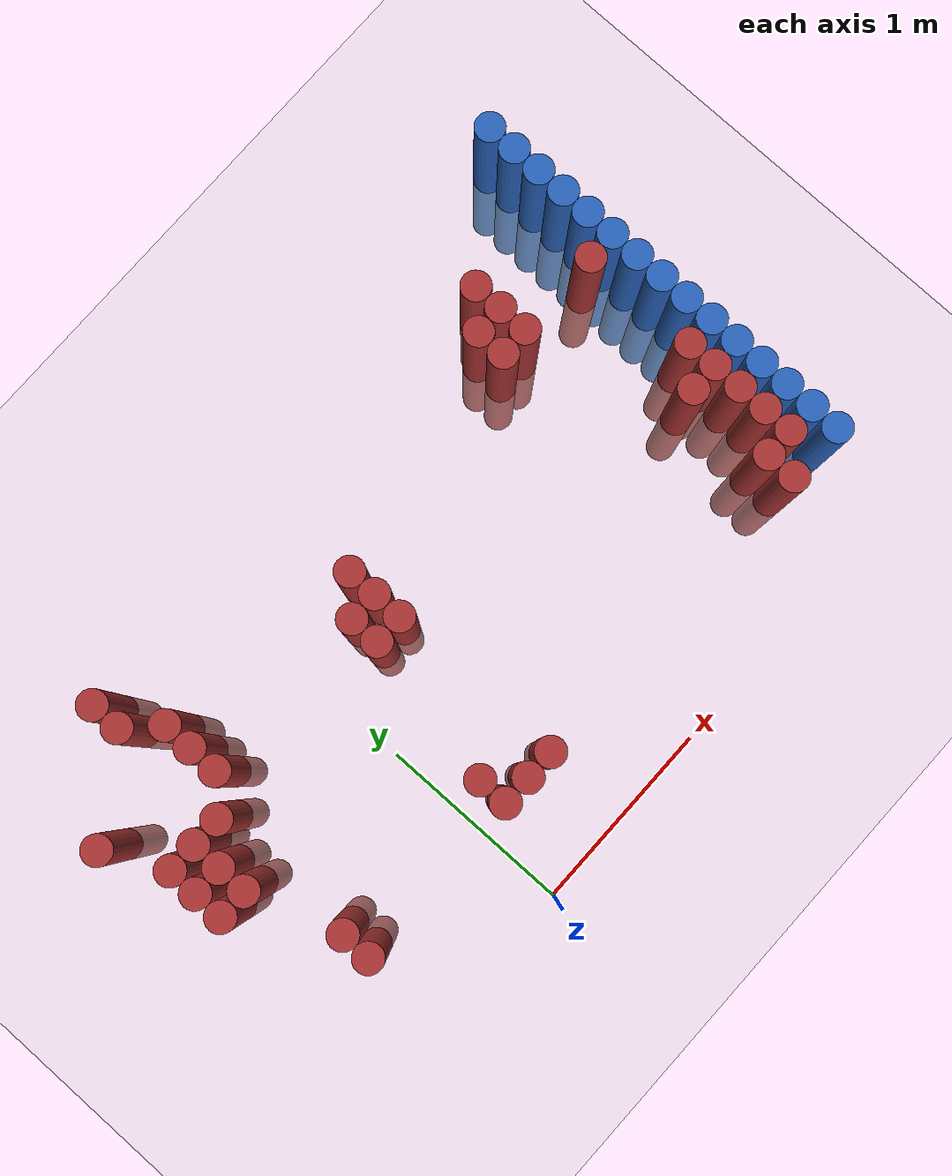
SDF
<sdf version="1.6">
 <world name="default">
  <model name="ground_plane">
   <static>1</static>
   <link name="link">
    <collision name="collision">
     <geometry><plane><normal>0 0 1</normal><size>100 100</size></plane></geometry>
     <surface><friction><ode><mu>100</mu><mu2>50</mu2></ode></friction></surface>
    </collision>
    <visual name="visual">
     <cast_shadows>0</cast_shadows>
     <geometry><plane><normal>0 0 1</normal><size>100 100</size></plane></geometry>
     <material>
      <script><uri>file://media/materials/scripts/gazebo.material</uri><name>Gazebo/Grey</name></script>
     </material>
    </visual>
   </link>
  </model>
  <model name="unit_cylinder_158">
   <static>1</static>
   <pose>-1.175000 1.675000 0.000000 0.000000 0.000000 0.000000</pose>
   <link name="link">
    <inertial>
     <mass>1</mass>
     <inertia><ixx>0.145833</ixx><ixy>0</ixy><ixz>0</ixz><iyy>0.145833</iyy><iyz>0</iyz><izz>0.125</izz></inertia>
    </inertial>
    <collision name="collision">
     <geometry><cylinder><radius>0.075000</radius><length>1.5</length></cylinder></geometry>
    </collision>
    <visual name="visual">
     <geometry><cylinder><radius>0.075000</radius><length>1.5</length></cylinder></geometry>
     <material>
      <ambient>0.648000 0.192000 0.192000 1</ambient>
      <diffuse>0.648000 0.192000 0.192000 1</diffuse>
     </material>
     <material>
      <script><name>Gazebo/Grey</name><uri>file://media/materials/scripts/gazebo.material</uri></script>
     </material>
    </visual>
   </link>
  </model>
  <model name="unit_cylinder_162">
   <static>1</static>
   <pose>-1.025000 1.075000 0.000000 0.000000 0.000000 0.000000</pose>
   <link name="link">
    <inertial>
     <mass>1</mass>
     <inertia><ixx>0.145833</ixx><ixy>0</ixy><ixz>0</ixz><iyy>0.145833</iyy><iyz>0</iyz><izz>0.125</izz></inertia>
    </inertial>
    <collision name="collision">
     <geometry><cylinder><radius>0.075000</radius><length>1.5</length></cylinder></geometry>
    </collision>
    <visual name="visual">
     <geometry><cylinder><radius>0.075000</radius><length>1.5</length></cylinder></geometry>
     <material>
      <ambient>0.648000 0.192000 0.192000 1</ambient>
      <diffuse>0.648000 0.192000 0.192000 1</diffuse>
     </material>
     <material>
      <script><name>Gazebo/Grey</name><uri>file://media/materials/scripts/gazebo.material</uri></script>
     </material>
    </visual>
   </link>
  </model>
  <model name="unit_cylinder_163">
   <static>1</static>
   <pose>-1.025000 1.225000 0.000000 0.000000 0.000000 0.000000</pose>
   <link name="link">
    <inertial>
     <mass>1</mass>
     <inertia><ixx>0.145833</ixx><ixy>0</ixy><ixz>0</ixz><iyy>0.145833</iyy><iyz>0</iyz><izz>0.125</izz></inertia>
    </inertial>
    <collision name="collision">
     <geometry><cylinder><radius>0.075000</radius><length>1.5</length></cylinder></geometry>
    </collision>
    <visual name="visual">
     <geometry><cylinder><radius>0.075000</radius><length>1.5</length></cylinder></geometry>
     <material>
      <ambient>0.648000 0.192000 0.192000 1</ambient>
      <diffuse>0.648000 0.192000 0.192000 1</diffuse>
     </material>
     <material>
      <script><name>Gazebo/Grey</name><uri>file://media/materials/scripts/gazebo.material</uri></script>
     </material>
    </visual>
   </link>
  </model>
  <model name="unit_cylinder_164">
   <static>1</static>
   <pose>-1.025000 1.375000 0.000000 0.000000 0.000000 0.000000</pose>
   <link name="link">
    <inertial>
     <mass>1</mass>
     <inertia><ixx>0.145833</ixx><ixy>0</ixy><ixz>0</ixz><iyy>0.145833</iyy><iyz>0</iyz><izz>0.125</izz></inertia>
    </inertial>
    <collision name="collision">
     <geometry><cylinder><radius>0.075000</radius><length>1.5</length></cylinder></geometry>
    </collision>
    <visual name="visual">
     <geometry><cylinder><radius>0.075000</radius><length>1.5</length></cylinder></geometry>
     <material>
      <ambient>0.648000 0.192000 0.192000 1</ambient>
      <diffuse>0.648000 0.192000 0.192000 1</diffuse>
     </material>
     <material>
      <script><name>Gazebo/Grey</name><uri>file://media/materials/scripts/gazebo.material</uri></script>
     </material>
    </visual>
   </link>
  </model>
  <model name="unit_cylinder_170">
   <static>1</static>
   <pose>-0.875000 1.075000 0.000000 0.000000 0.000000 0.000000</pose>
   <link name="link">
    <inertial>
     <mass>1</mass>
     <inertia><ixx>0.145833</ixx><ixy>0</ixy><ixz>0</ixz><iyy>0.145833</iyy><iyz>0</iyz><izz>0.125</izz></inertia>
    </inertial>
    <collision name="collision">
     <geometry><cylinder><radius>0.075000</radius><length>1.5</length></cylinder></geometry>
    </collision>
    <visual name="visual">
     <geometry><cylinder><radius>0.075000</radius><length>1.5</length></cylinder></geometry>
     <material>
      <ambient>0.648000 0.192000 0.192000 1</ambient>
      <diffuse>0.648000 0.192000 0.192000 1</diffuse>
     </material>
     <material>
      <script><name>Gazebo/Grey</name><uri>file://media/materials/scripts/gazebo.material</uri></script>
     </material>
    </visual>
   </link>
  </model>
  <model name="unit_cylinder_171">
   <static>1</static>
   <pose>-0.875000 1.225000 0.000000 0.000000 0.000000 0.000000</pose>
   <link name="link">
    <inertial>
     <mass>1</mass>
     <inertia><ixx>0.145833</ixx><ixy>0</ixy><ixz>0</ixz><iyy>0.145833</iyy><iyz>0</iyz><izz>0.125</izz></inertia>
    </inertial>
    <collision name="collision">
     <geometry><cylinder><radius>0.075000</radius><length>1.5</length></cylinder></geometry>
    </collision>
    <visual name="visual">
     <geometry><cylinder><radius>0.075000</radius><length>1.5</length></cylinder></geometry>
     <material>
      <ambient>0.648000 0.192000 0.192000 1</ambient>
      <diffuse>0.648000 0.192000 0.192000 1</diffuse>
     </material>
     <material>
      <script><name>Gazebo/Grey</name><uri>file://media/materials/scripts/gazebo.material</uri></script>
     </material>
    </visual>
   </link>
  </model>
  <model name="unit_cylinder_172">
   <static>1</static>
   <pose>-0.875000 1.375000 0.000000 0.000000 0.000000 0.000000</pose>
   <link name="link">
    <inertial>
     <mass>1</mass>
     <inertia><ixx>0.145833</ixx><ixy>0</ixy><ixz>0</ixz><iyy>0.145833</iyy><iyz>0</iyz><izz>0.125</izz></inertia>
    </inertial>
    <collision name="collision">
     <geometry><cylinder><radius>0.075000</radius><length>1.5</length></cylinder></geometry>
    </collision>
    <visual name="visual">
     <geometry><cylinder><radius>0.075000</radius><length>1.5</length></cylinder></geometry>
     <material>
      <ambient>0.648000 0.192000 0.192000 1</ambient>
      <diffuse>0.648000 0.192000 0.192000 1</diffuse>
     </material>
     <material>
      <script><name>Gazebo/Grey</name><uri>file://media/materials/scripts/gazebo.material</uri></script>
     </material>
    </visual>
   </link>
  </model>
  <model name="unit_cylinder_175">
   <static>1</static>
   <pose>-0.725000 0.475000 0.000000 0.000000 0.000000 0.000000</pose>
   <link name="link">
    <inertial>
     <mass>1</mass>
     <inertia><ixx>0.145833</ixx><ixy>0</ixy><ixz>0</ixz><iyy>0.145833</iyy><iyz>0</iyz><izz>0.125</izz></inertia>
    </inertial>
    <collision name="collision">
     <geometry><cylinder><radius>0.075000</radius><length>1.5</length></cylinder></geometry>
    </collision>
    <visual name="visual">
     <geometry><cylinder><radius>0.075000</radius><length>1.5</length></cylinder></geometry>
     <material>
      <ambient>0.648000 0.192000 0.192000 1</ambient>
      <diffuse>0.648000 0.192000 0.192000 1</diffuse>
     </material>
     <material>
      <script><name>Gazebo/Grey</name><uri>file://media/materials/scripts/gazebo.material</uri></script>
     </material>
    </visual>
   </link>
  </model>
  <model name="unit_cylinder_176">
   <static>1</static>
   <pose>-0.725000 0.625000 0.000000 0.000000 0.000000 0.000000</pose>
   <link name="link">
    <inertial>
     <mass>1</mass>
     <inertia><ixx>0.145833</ixx><ixy>0</ixy><ixz>0</ixz><iyy>0.145833</iyy><iyz>0</iyz><izz>0.125</izz></inertia>
    </inertial>
    <collision name="collision">
     <geometry><cylinder><radius>0.075000</radius><length>1.5</length></cylinder></geometry>
    </collision>
    <visual name="visual">
     <geometry><cylinder><radius>0.075000</radius><length>1.5</length></cylinder></geometry>
     <material>
      <ambient>0.648000 0.192000 0.192000 1</ambient>
      <diffuse>0.648000 0.192000 0.192000 1</diffuse>
     </material>
     <material>
      <script><name>Gazebo/Grey</name><uri>file://media/materials/scripts/gazebo.material</uri></script>
     </material>
    </visual>
   </link>
  </model>
  <model name="unit_cylinder_177">
   <static>1</static>
   <pose>-0.725000 1.375000 0.000000 0.000000 0.000000 0.000000</pose>
   <link name="link">
    <inertial>
     <mass>1</mass>
     <inertia><ixx>0.145833</ixx><ixy>0</ixy><ixz>0</ixz><iyy>0.145833</iyy><iyz>0</iyz><izz>0.125</izz></inertia>
    </inertial>
    <collision name="collision">
     <geometry><cylinder><radius>0.075000</radius><length>1.5</length></cylinder></geometry>
    </collision>
    <visual name="visual">
     <geometry><cylinder><radius>0.075000</radius><length>1.5</length></cylinder></geometry>
     <material>
      <ambient>0.648000 0.192000 0.192000 1</ambient>
      <diffuse>0.648000 0.192000 0.192000 1</diffuse>
     </material>
     <material>
      <script><name>Gazebo/Grey</name><uri>file://media/materials/scripts/gazebo.material</uri></script>
     </material>
    </visual>
   </link>
  </model>
  <model name="unit_cylinder_178">
   <static>1</static>
   <pose>-0.725000 1.975000 0.000000 0.000000 0.000000 0.000000</pose>
   <link name="link">
    <inertial>
     <mass>1</mass>
     <inertia><ixx>0.145833</ixx><ixy>0</ixy><ixz>0</ixz><iyy>0.145833</iyy><iyz>0</iyz><izz>0.125</izz></inertia>
    </inertial>
    <collision name="collision">
     <geometry><cylinder><radius>0.075000</radius><length>1.5</length></cylinder></geometry>
    </collision>
    <visual name="visual">
     <geometry><cylinder><radius>0.075000</radius><length>1.5</length></cylinder></geometry>
     <material>
      <ambient>0.648000 0.192000 0.192000 1</ambient>
      <diffuse>0.648000 0.192000 0.192000 1</diffuse>
     </material>
     <material>
      <script><name>Gazebo/Grey</name><uri>file://media/materials/scripts/gazebo.material</uri></script>
     </material>
    </visual>
   </link>
  </model>
  <model name="unit_cylinder_179">
   <static>1</static>
   <pose>-0.725000 2.125000 0.000000 0.000000 0.000000 0.000000</pose>
   <link name="link">
    <inertial>
     <mass>1</mass>
     <inertia><ixx>0.145833</ixx><ixy>0</ixy><ixz>0</ixz><iyy>0.145833</iyy><iyz>0</iyz><izz>0.125</izz></inertia>
    </inertial>
    <collision name="collision">
     <geometry><cylinder><radius>0.075000</radius><length>1.5</length></cylinder></geometry>
    </collision>
    <visual name="visual">
     <geometry><cylinder><radius>0.075000</radius><length>1.5</length></cylinder></geometry>
     <material>
      <ambient>0.648000 0.192000 0.192000 1</ambient>
      <diffuse>0.648000 0.192000 0.192000 1</diffuse>
     </material>
     <material>
      <script><name>Gazebo/Grey</name><uri>file://media/materials/scripts/gazebo.material</uri></script>
     </material>
    </visual>
   </link>
  </model>
  <model name="unit_cylinder_180">
   <static>1</static>
   <pose>-0.575000 1.525000 0.000000 0.000000 0.000000 0.000000</pose>
   <link name="link">
    <inertial>
     <mass>1</mass>
     <inertia><ixx>0.145833</ixx><ixy>0</ixy><ixz>0</ixz><iyy>0.145833</iyy><iyz>0</iyz><izz>0.125</izz></inertia>
    </inertial>
    <collision name="collision">
     <geometry><cylinder><radius>0.075000</radius><length>1.5</length></cylinder></geometry>
    </collision>
    <visual name="visual">
     <geometry><cylinder><radius>0.075000</radius><length>1.5</length></cylinder></geometry>
     <material>
      <ambient>0.648000 0.192000 0.192000 1</ambient>
      <diffuse>0.648000 0.192000 0.192000 1</diffuse>
     </material>
     <material>
      <script><name>Gazebo/Grey</name><uri>file://media/materials/scripts/gazebo.material</uri></script>
     </material>
    </visual>
   </link>
  </model>
  <model name="unit_cylinder_181">
   <static>1</static>
   <pose>-0.575000 1.675000 0.000000 0.000000 0.000000 0.000000</pose>
   <link name="link">
    <inertial>
     <mass>1</mass>
     <inertia><ixx>0.145833</ixx><ixy>0</ixy><ixz>0</ixz><iyy>0.145833</iyy><iyz>0</iyz><izz>0.125</izz></inertia>
    </inertial>
    <collision name="collision">
     <geometry><cylinder><radius>0.075000</radius><length>1.5</length></cylinder></geometry>
    </collision>
    <visual name="visual">
     <geometry><cylinder><radius>0.075000</radius><length>1.5</length></cylinder></geometry>
     <material>
      <ambient>0.648000 0.192000 0.192000 1</ambient>
      <diffuse>0.648000 0.192000 0.192000 1</diffuse>
     </material>
     <material>
      <script><name>Gazebo/Grey</name><uri>file://media/materials/scripts/gazebo.material</uri></script>
     </material>
    </visual>
   </link>
  </model>
  <model name="unit_cylinder_182">
   <static>1</static>
   <pose>-0.575000 1.825000 0.000000 0.000000 0.000000 0.000000</pose>
   <link name="link">
    <inertial>
     <mass>1</mass>
     <inertia><ixx>0.145833</ixx><ixy>0</ixy><ixz>0</ixz><iyy>0.145833</iyy><iyz>0</iyz><izz>0.125</izz></inertia>
    </inertial>
    <collision name="collision">
     <geometry><cylinder><radius>0.075000</radius><length>1.5</length></cylinder></geometry>
    </collision>
    <visual name="visual">
     <geometry><cylinder><radius>0.075000</radius><length>1.5</length></cylinder></geometry>
     <material>
      <ambient>0.648000 0.192000 0.192000 1</ambient>
      <diffuse>0.648000 0.192000 0.192000 1</diffuse>
     </material>
     <material>
      <script><name>Gazebo/Grey</name><uri>file://media/materials/scripts/gazebo.material</uri></script>
     </material>
    </visual>
   </link>
  </model>
  <model name="unit_cylinder_183">
   <static>1</static>
   <pose>0.175000 0.475000 0.000000 0.000000 0.000000 0.000000</pose>
   <link name="link">
    <inertial>
     <mass>1</mass>
     <inertia><ixx>0.145833</ixx><ixy>0</ixy><ixz>0</ixz><iyy>0.145833</iyy><iyz>0</iyz><izz>0.125</izz></inertia>
    </inertial>
    <collision name="collision">
     <geometry><cylinder><radius>0.075000</radius><length>1.5</length></cylinder></geometry>
    </collision>
    <visual name="visual">
     <geometry><cylinder><radius>0.075000</radius><length>1.5</length></cylinder></geometry>
     <material>
      <ambient>0.648000 0.192000 0.192000 1</ambient>
      <diffuse>0.648000 0.192000 0.192000 1</diffuse>
     </material>
     <material>
      <script><name>Gazebo/Grey</name><uri>file://media/materials/scripts/gazebo.material</uri></script>
     </material>
    </visual>
   </link>
  </model>
  <model name="unit_cylinder_184">
   <static>1</static>
   <pose>0.175000 0.625000 0.000000 0.000000 0.000000 0.000000</pose>
   <link name="link">
    <inertial>
     <mass>1</mass>
     <inertia><ixx>0.145833</ixx><ixy>0</ixy><ixz>0</ixz><iyy>0.145833</iyy><iyz>0</iyz><izz>0.125</izz></inertia>
    </inertial>
    <collision name="collision">
     <geometry><cylinder><radius>0.075000</radius><length>1.5</length></cylinder></geometry>
    </collision>
    <visual name="visual">
     <geometry><cylinder><radius>0.075000</radius><length>1.5</length></cylinder></geometry>
     <material>
      <ambient>0.648000 0.192000 0.192000 1</ambient>
      <diffuse>0.648000 0.192000 0.192000 1</diffuse>
     </material>
     <material>
      <script><name>Gazebo/Grey</name><uri>file://media/materials/scripts/gazebo.material</uri></script>
     </material>
    </visual>
   </link>
  </model>
  <model name="unit_cylinder_186">
   <static>1</static>
   <pose>0.325000 0.475000 0.000000 0.000000 0.000000 0.000000</pose>
   <link name="link">
    <inertial>
     <mass>1</mass>
     <inertia><ixx>0.145833</ixx><ixy>0</ixy><ixz>0</ixz><iyy>0.145833</iyy><iyz>0</iyz><izz>0.125</izz></inertia>
    </inertial>
    <collision name="collision">
     <geometry><cylinder><radius>0.075000</radius><length>1.5</length></cylinder></geometry>
    </collision>
    <visual name="visual">
     <geometry><cylinder><radius>0.075000</radius><length>1.5</length></cylinder></geometry>
     <material>
      <ambient>0.648000 0.192000 0.192000 1</ambient>
      <diffuse>0.648000 0.192000 0.192000 1</diffuse>
     </material>
     <material>
      <script><name>Gazebo/Grey</name><uri>file://media/materials/scripts/gazebo.material</uri></script>
     </material>
    </visual>
   </link>
  </model>
  <model name="unit_cylinder_187">
   <static>1</static>
   <pose>0.325000 1.375000 0.000000 0.000000 0.000000 0.000000</pose>
   <link name="link">
    <inertial>
     <mass>1</mass>
     <inertia><ixx>0.145833</ixx><ixy>0</ixy><ixz>0</ixz><iyy>0.145833</iyy><iyz>0</iyz><izz>0.125</izz></inertia>
    </inertial>
    <collision name="collision">
     <geometry><cylinder><radius>0.075000</radius><length>1.5</length></cylinder></geometry>
    </collision>
    <visual name="visual">
     <geometry><cylinder><radius>0.075000</radius><length>1.5</length></cylinder></geometry>
     <material>
      <ambient>0.648000 0.192000 0.192000 1</ambient>
      <diffuse>0.648000 0.192000 0.192000 1</diffuse>
     </material>
     <material>
      <script><name>Gazebo/Grey</name><uri>file://media/materials/scripts/gazebo.material</uri></script>
     </material>
    </visual>
   </link>
  </model>
  <model name="unit_cylinder_188">
   <static>1</static>
   <pose>0.325000 1.525000 0.000000 0.000000 0.000000 0.000000</pose>
   <link name="link">
    <inertial>
     <mass>1</mass>
     <inertia><ixx>0.145833</ixx><ixy>0</ixy><ixz>0</ixz><iyy>0.145833</iyy><iyz>0</iyz><izz>0.125</izz></inertia>
    </inertial>
    <collision name="collision">
     <geometry><cylinder><radius>0.075000</radius><length>1.5</length></cylinder></geometry>
    </collision>
    <visual name="visual">
     <geometry><cylinder><radius>0.075000</radius><length>1.5</length></cylinder></geometry>
     <material>
      <ambient>0.648000 0.192000 0.192000 1</ambient>
      <diffuse>0.648000 0.192000 0.192000 1</diffuse>
     </material>
     <material>
      <script><name>Gazebo/Grey</name><uri>file://media/materials/scripts/gazebo.material</uri></script>
     </material>
    </visual>
   </link>
  </model>
  <model name="unit_cylinder_190">
   <static>1</static>
   <pose>0.475000 0.475000 0.000000 0.000000 0.000000 0.000000</pose>
   <link name="link">
    <inertial>
     <mass>1</mass>
     <inertia><ixx>0.145833</ixx><ixy>0</ixy><ixz>0</ixz><iyy>0.145833</iyy><iyz>0</iyz><izz>0.125</izz></inertia>
    </inertial>
    <collision name="collision">
     <geometry><cylinder><radius>0.075000</radius><length>1.5</length></cylinder></geometry>
    </collision>
    <visual name="visual">
     <geometry><cylinder><radius>0.075000</radius><length>1.5</length></cylinder></geometry>
     <material>
      <ambient>0.648000 0.192000 0.192000 1</ambient>
      <diffuse>0.648000 0.192000 0.192000 1</diffuse>
     </material>
     <material>
      <script><name>Gazebo/Grey</name><uri>file://media/materials/scripts/gazebo.material</uri></script>
     </material>
    </visual>
   </link>
  </model>
  <model name="unit_cylinder_191">
   <static>1</static>
   <pose>0.475000 1.375000 0.000000 0.000000 0.000000 0.000000</pose>
   <link name="link">
    <inertial>
     <mass>1</mass>
     <inertia><ixx>0.145833</ixx><ixy>0</ixy><ixz>0</ixz><iyy>0.145833</iyy><iyz>0</iyz><izz>0.125</izz></inertia>
    </inertial>
    <collision name="collision">
     <geometry><cylinder><radius>0.075000</radius><length>1.5</length></cylinder></geometry>
    </collision>
    <visual name="visual">
     <geometry><cylinder><radius>0.075000</radius><length>1.5</length></cylinder></geometry>
     <material>
      <ambient>0.648000 0.192000 0.192000 1</ambient>
      <diffuse>0.648000 0.192000 0.192000 1</diffuse>
     </material>
     <material>
      <script><name>Gazebo/Grey</name><uri>file://media/materials/scripts/gazebo.material</uri></script>
     </material>
    </visual>
   </link>
  </model>
  <model name="unit_cylinder_192">
   <static>1</static>
   <pose>0.475000 1.525000 0.000000 0.000000 0.000000 0.000000</pose>
   <link name="link">
    <inertial>
     <mass>1</mass>
     <inertia><ixx>0.145833</ixx><ixy>0</ixy><ixz>0</ixz><iyy>0.145833</iyy><iyz>0</iyz><izz>0.125</izz></inertia>
    </inertial>
    <collision name="collision">
     <geometry><cylinder><radius>0.075000</radius><length>1.5</length></cylinder></geometry>
    </collision>
    <visual name="visual">
     <geometry><cylinder><radius>0.075000</radius><length>1.5</length></cylinder></geometry>
     <material>
      <ambient>0.648000 0.192000 0.192000 1</ambient>
      <diffuse>0.648000 0.192000 0.192000 1</diffuse>
     </material>
     <material>
      <script><name>Gazebo/Grey</name><uri>file://media/materials/scripts/gazebo.material</uri></script>
     </material>
    </visual>
   </link>
  </model>
  <model name="unit_cylinder_193">
   <static>1</static>
   <pose>0.475000 1.675000 0.000000 0.000000 0.000000 0.000000</pose>
   <link name="link">
    <inertial>
     <mass>1</mass>
     <inertia><ixx>0.145833</ixx><ixy>0</ixy><ixz>0</ixz><iyy>0.145833</iyy><iyz>0</iyz><izz>0.125</izz></inertia>
    </inertial>
    <collision name="collision">
     <geometry><cylinder><radius>0.075000</radius><length>1.5</length></cylinder></geometry>
    </collision>
    <visual name="visual">
     <geometry><cylinder><radius>0.075000</radius><length>1.5</length></cylinder></geometry>
     <material>
      <ambient>0.648000 0.192000 0.192000 1</ambient>
      <diffuse>0.648000 0.192000 0.192000 1</diffuse>
     </material>
     <material>
      <script><name>Gazebo/Grey</name><uri>file://media/materials/scripts/gazebo.material</uri></script>
     </material>
    </visual>
   </link>
  </model>
  <model name="unit_cylinder_210">
   <static>1</static>
   <pose>1.675000 1.825000 0.000000 0.000000 0.000000 0.000000</pose>
   <link name="link">
    <inertial>
     <mass>1</mass>
     <inertia><ixx>0.145833</ixx><ixy>0</ixy><ixz>0</ixz><iyy>0.145833</iyy><iyz>0</iyz><izz>0.125</izz></inertia>
    </inertial>
    <collision name="collision">
     <geometry><cylinder><radius>0.075000</radius><length>1.5</length></cylinder></geometry>
    </collision>
    <visual name="visual">
     <geometry><cylinder><radius>0.075000</radius><length>1.5</length></cylinder></geometry>
     <material>
      <ambient>0.648000 0.192000 0.192000 1</ambient>
      <diffuse>0.648000 0.192000 0.192000 1</diffuse>
     </material>
     <material>
      <script><name>Gazebo/Grey</name><uri>file://media/materials/scripts/gazebo.material</uri></script>
     </material>
    </visual>
   </link>
  </model>
  <model name="unit_cylinder_211">
   <static>1</static>
   <pose>1.675000 1.975000 0.000000 0.000000 0.000000 0.000000</pose>
   <link name="link">
    <inertial>
     <mass>1</mass>
     <inertia><ixx>0.145833</ixx><ixy>0</ixy><ixz>0</ixz><iyy>0.145833</iyy><iyz>0</iyz><izz>0.125</izz></inertia>
    </inertial>
    <collision name="collision">
     <geometry><cylinder><radius>0.075000</radius><length>1.5</length></cylinder></geometry>
    </collision>
    <visual name="visual">
     <geometry><cylinder><radius>0.075000</radius><length>1.5</length></cylinder></geometry>
     <material>
      <ambient>0.648000 0.192000 0.192000 1</ambient>
      <diffuse>0.648000 0.192000 0.192000 1</diffuse>
     </material>
     <material>
      <script><name>Gazebo/Grey</name><uri>file://media/materials/scripts/gazebo.material</uri></script>
     </material>
    </visual>
   </link>
  </model>
  <model name="unit_cylinder_214">
   <static>1</static>
   <pose>1.825000 1.825000 0.000000 0.000000 0.000000 0.000000</pose>
   <link name="link">
    <inertial>
     <mass>1</mass>
     <inertia><ixx>0.145833</ixx><ixy>0</ixy><ixz>0</ixz><iyy>0.145833</iyy><iyz>0</iyz><izz>0.125</izz></inertia>
    </inertial>
    <collision name="collision">
     <geometry><cylinder><radius>0.075000</radius><length>1.5</length></cylinder></geometry>
    </collision>
    <visual name="visual">
     <geometry><cylinder><radius>0.075000</radius><length>1.5</length></cylinder></geometry>
     <material>
      <ambient>0.648000 0.192000 0.192000 1</ambient>
      <diffuse>0.648000 0.192000 0.192000 1</diffuse>
     </material>
     <material>
      <script><name>Gazebo/Grey</name><uri>file://media/materials/scripts/gazebo.material</uri></script>
     </material>
    </visual>
   </link>
  </model>
  <model name="unit_cylinder_215">
   <static>1</static>
   <pose>1.825000 1.975000 0.000000 0.000000 0.000000 0.000000</pose>
   <link name="link">
    <inertial>
     <mass>1</mass>
     <inertia><ixx>0.145833</ixx><ixy>0</ixy><ixz>0</ixz><iyy>0.145833</iyy><iyz>0</iyz><izz>0.125</izz></inertia>
    </inertial>
    <collision name="collision">
     <geometry><cylinder><radius>0.075000</radius><length>1.5</length></cylinder></geometry>
    </collision>
    <visual name="visual">
     <geometry><cylinder><radius>0.075000</radius><length>1.5</length></cylinder></geometry>
     <material>
      <ambient>0.648000 0.192000 0.192000 1</ambient>
      <diffuse>0.648000 0.192000 0.192000 1</diffuse>
     </material>
     <material>
      <script><name>Gazebo/Grey</name><uri>file://media/materials/scripts/gazebo.material</uri></script>
     </material>
    </visual>
   </link>
  </model>
  <model name="unit_cylinder_216">
   <static>1</static>
   <pose>1.825000 2.125000 0.000000 0.000000 0.000000 0.000000</pose>
   <link name="link">
    <inertial>
     <mass>1</mass>
     <inertia><ixx>0.145833</ixx><ixy>0</ixy><ixz>0</ixz><iyy>0.145833</iyy><iyz>0</iyz><izz>0.125</izz></inertia>
    </inertial>
    <collision name="collision">
     <geometry><cylinder><radius>0.075000</radius><length>1.5</length></cylinder></geometry>
    </collision>
    <visual name="visual">
     <geometry><cylinder><radius>0.075000</radius><length>1.5</length></cylinder></geometry>
     <material>
      <ambient>0.648000 0.192000 0.192000 1</ambient>
      <diffuse>0.648000 0.192000 0.192000 1</diffuse>
     </material>
     <material>
      <script><name>Gazebo/Grey</name><uri>file://media/materials/scripts/gazebo.material</uri></script>
     </material>
    </visual>
   </link>
  </model>
  <model name="unit_cylinder_218">
   <static>1</static>
   <pose>2.125000 0.475000 0.000000 0.000000 0.000000 0.000000</pose>
   <link name="link">
    <inertial>
     <mass>1</mass>
     <inertia><ixx>0.145833</ixx><ixy>0</ixy><ixz>0</ixz><iyy>0.145833</iyy><iyz>0</iyz><izz>0.125</izz></inertia>
    </inertial>
    <collision name="collision">
     <geometry><cylinder><radius>0.075000</radius><length>1.5</length></cylinder></geometry>
    </collision>
    <visual name="visual">
     <geometry><cylinder><radius>0.075000</radius><length>1.5</length></cylinder></geometry>
     <material>
      <ambient>0.648000 0.192000 0.192000 1</ambient>
      <diffuse>0.648000 0.192000 0.192000 1</diffuse>
     </material>
     <material>
      <script><name>Gazebo/Grey</name><uri>file://media/materials/scripts/gazebo.material</uri></script>
     </material>
    </visual>
   </link>
  </model>
  <model name="unit_cylinder_219">
   <static>1</static>
   <pose>2.125000 0.625000 0.000000 0.000000 0.000000 0.000000</pose>
   <link name="link">
    <inertial>
     <mass>1</mass>
     <inertia><ixx>0.145833</ixx><ixy>0</ixy><ixz>0</ixz><iyy>0.145833</iyy><iyz>0</iyz><izz>0.125</izz></inertia>
    </inertial>
    <collision name="collision">
     <geometry><cylinder><radius>0.075000</radius><length>1.5</length></cylinder></geometry>
    </collision>
    <visual name="visual">
     <geometry><cylinder><radius>0.075000</radius><length>1.5</length></cylinder></geometry>
     <material>
      <ambient>0.648000 0.192000 0.192000 1</ambient>
      <diffuse>0.648000 0.192000 0.192000 1</diffuse>
     </material>
     <material>
      <script><name>Gazebo/Grey</name><uri>file://media/materials/scripts/gazebo.material</uri></script>
     </material>
    </visual>
   </link>
  </model>
  <model name="unit_cylinder_220">
   <static>1</static>
   <pose>2.125000 1.075000 0.000000 0.000000 0.000000 0.000000</pose>
   <link name="link">
    <inertial>
     <mass>1</mass>
     <inertia><ixx>0.145833</ixx><ixy>0</ixy><ixz>0</ixz><iyy>0.145833</iyy><iyz>0</iyz><izz>0.125</izz></inertia>
    </inertial>
    <collision name="collision">
     <geometry><cylinder><radius>0.075000</radius><length>1.5</length></cylinder></geometry>
    </collision>
    <visual name="visual">
     <geometry><cylinder><radius>0.075000</radius><length>1.5</length></cylinder></geometry>
     <material>
      <ambient>0.648000 0.192000 0.192000 1</ambient>
      <diffuse>0.648000 0.192000 0.192000 1</diffuse>
     </material>
     <material>
      <script><name>Gazebo/Grey</name><uri>file://media/materials/scripts/gazebo.material</uri></script>
     </material>
    </visual>
   </link>
  </model>
  <model name="unit_cylinder_225">
   <static>1</static>
   <pose>2.275000 0.625000 0.000000 0.000000 0.000000 0.000000</pose>
   <link name="link">
    <inertial>
     <mass>1</mass>
     <inertia><ixx>0.145833</ixx><ixy>0</ixy><ixz>0</ixz><iyy>0.145833</iyy><iyz>0</iyz><izz>0.125</izz></inertia>
    </inertial>
    <collision name="collision">
     <geometry><cylinder><radius>0.075000</radius><length>1.5</length></cylinder></geometry>
    </collision>
    <visual name="visual">
     <geometry><cylinder><radius>0.075000</radius><length>1.5</length></cylinder></geometry>
     <material>
      <ambient>0.648000 0.192000 0.192000 1</ambient>
      <diffuse>0.648000 0.192000 0.192000 1</diffuse>
     </material>
     <material>
      <script><name>Gazebo/Grey</name><uri>file://media/materials/scripts/gazebo.material</uri></script>
     </material>
    </visual>
   </link>
  </model>
  <model name="unit_cylinder_226">
   <static>1</static>
   <pose>2.275000 0.775000 0.000000 0.000000 0.000000 0.000000</pose>
   <link name="link">
    <inertial>
     <mass>1</mass>
     <inertia><ixx>0.145833</ixx><ixy>0</ixy><ixz>0</ixz><iyy>0.145833</iyy><iyz>0</iyz><izz>0.125</izz></inertia>
    </inertial>
    <collision name="collision">
     <geometry><cylinder><radius>0.075000</radius><length>1.5</length></cylinder></geometry>
    </collision>
    <visual name="visual">
     <geometry><cylinder><radius>0.075000</radius><length>1.5</length></cylinder></geometry>
     <material>
      <ambient>0.648000 0.192000 0.192000 1</ambient>
      <diffuse>0.648000 0.192000 0.192000 1</diffuse>
     </material>
     <material>
      <script><name>Gazebo/Grey</name><uri>file://media/materials/scripts/gazebo.material</uri></script>
     </material>
    </visual>
   </link>
  </model>
  <model name="unit_cylinder_227">
   <static>1</static>
   <pose>2.275000 0.925000 0.000000 0.000000 0.000000 0.000000</pose>
   <link name="link">
    <inertial>
     <mass>1</mass>
     <inertia><ixx>0.145833</ixx><ixy>0</ixy><ixz>0</ixz><iyy>0.145833</iyy><iyz>0</iyz><izz>0.125</izz></inertia>
    </inertial>
    <collision name="collision">
     <geometry><cylinder><radius>0.075000</radius><length>1.5</length></cylinder></geometry>
    </collision>
    <visual name="visual">
     <geometry><cylinder><radius>0.075000</radius><length>1.5</length></cylinder></geometry>
     <material>
      <ambient>0.648000 0.192000 0.192000 1</ambient>
      <diffuse>0.648000 0.192000 0.192000 1</diffuse>
     </material>
     <material>
      <script><name>Gazebo/Grey</name><uri>file://media/materials/scripts/gazebo.material</uri></script>
     </material>
    </visual>
   </link>
  </model>
  <model name="unit_cylinder_228">
   <static>1</static>
   <pose>2.275000 1.075000 0.000000 0.000000 0.000000 0.000000</pose>
   <link name="link">
    <inertial>
     <mass>1</mass>
     <inertia><ixx>0.145833</ixx><ixy>0</ixy><ixz>0</ixz><iyy>0.145833</iyy><iyz>0</iyz><izz>0.125</izz></inertia>
    </inertial>
    <collision name="collision">
     <geometry><cylinder><radius>0.075000</radius><length>1.5</length></cylinder></geometry>
    </collision>
    <visual name="visual">
     <geometry><cylinder><radius>0.075000</radius><length>1.5</length></cylinder></geometry>
     <material>
      <ambient>0.648000 0.192000 0.192000 1</ambient>
      <diffuse>0.648000 0.192000 0.192000 1</diffuse>
     </material>
     <material>
      <script><name>Gazebo/Grey</name><uri>file://media/materials/scripts/gazebo.material</uri></script>
     </material>
    </visual>
   </link>
  </model>
  <model name="unit_cylinder_229">
   <static>1</static>
   <pose>2.275000 1.225000 0.000000 0.000000 0.000000 0.000000</pose>
   <link name="link">
    <inertial>
     <mass>1</mass>
     <inertia><ixx>0.145833</ixx><ixy>0</ixy><ixz>0</ixz><iyy>0.145833</iyy><iyz>0</iyz><izz>0.125</izz></inertia>
    </inertial>
    <collision name="collision">
     <geometry><cylinder><radius>0.075000</radius><length>1.5</length></cylinder></geometry>
    </collision>
    <visual name="visual">
     <geometry><cylinder><radius>0.075000</radius><length>1.5</length></cylinder></geometry>
     <material>
      <ambient>0.648000 0.192000 0.192000 1</ambient>
      <diffuse>0.648000 0.192000 0.192000 1</diffuse>
     </material>
     <material>
      <script><name>Gazebo/Grey</name><uri>file://media/materials/scripts/gazebo.material</uri></script>
     </material>
    </visual>
   </link>
  </model>
  <model name="unit_cylinder_230">
   <static>1</static>
   <pose>2.275000 1.825000 0.000000 0.000000 0.000000 0.000000</pose>
   <link name="link">
    <inertial>
     <mass>1</mass>
     <inertia><ixx>0.145833</ixx><ixy>0</ixy><ixz>0</ixz><iyy>0.145833</iyy><iyz>0</iyz><izz>0.125</izz></inertia>
    </inertial>
    <collision name="collision">
     <geometry><cylinder><radius>0.075000</radius><length>1.5</length></cylinder></geometry>
    </collision>
    <visual name="visual">
     <geometry><cylinder><radius>0.075000</radius><length>1.5</length></cylinder></geometry>
     <material>
      <ambient>0.648000 0.192000 0.192000 1</ambient>
      <diffuse>0.648000 0.192000 0.192000 1</diffuse>
     </material>
     <material>
      <script><name>Gazebo/Grey</name><uri>file://media/materials/scripts/gazebo.material</uri></script>
     </material>
    </visual>
   </link>
  </model>
  <model name="unit_cylinder_239">
   <static>1</static>
   <pose>2.425000 0.475000 0.000000 0.000000 0.000000 0.000000</pose>
   <link name="link">
    <inertial>
     <mass>1</mass>
     <inertia><ixx>0.145833</ixx><ixy>0</ixy><ixz>0</ixz><iyy>0.145833</iyy><iyz>0</iyz><izz>0.125</izz></inertia>
    </inertial>
    <collision name="collision">
     <geometry><cylinder><radius>0.075000</radius><length>1.5</length></cylinder></geometry>
    </collision>
    <visual name="visual">
     <geometry><cylinder><radius>0.075000</radius><length>1.5</length></cylinder></geometry>
     <material>
      <ambient>0.152000 0.379000 0.720000 1</ambient>
      <diffuse>0.152000 0.379000 0.720000 1</diffuse>
     </material>
     <material>
      <script><name>Gazebo/Grey</name><uri>file://media/materials/scripts/gazebo.material</uri></script>
     </material>
    </visual>
   </link>
  </model>
  <model name="unit_cylinder_240">
   <static>1</static>
   <pose>2.425000 0.625000 0.000000 0.000000 0.000000 0.000000</pose>
   <link name="link">
    <inertial>
     <mass>1</mass>
     <inertia><ixx>0.145833</ixx><ixy>0</ixy><ixz>0</ixz><iyy>0.145833</iyy><iyz>0</iyz><izz>0.125</izz></inertia>
    </inertial>
    <collision name="collision">
     <geometry><cylinder><radius>0.075000</radius><length>1.5</length></cylinder></geometry>
    </collision>
    <visual name="visual">
     <geometry><cylinder><radius>0.075000</radius><length>1.5</length></cylinder></geometry>
     <material>
      <ambient>0.152000 0.379000 0.720000 1</ambient>
      <diffuse>0.152000 0.379000 0.720000 1</diffuse>
     </material>
     <material>
      <script><name>Gazebo/Grey</name><uri>file://media/materials/scripts/gazebo.material</uri></script>
     </material>
    </visual>
   </link>
  </model>
  <model name="unit_cylinder_241">
   <static>1</static>
   <pose>2.425000 0.775000 0.000000 0.000000 0.000000 0.000000</pose>
   <link name="link">
    <inertial>
     <mass>1</mass>
     <inertia><ixx>0.145833</ixx><ixy>0</ixy><ixz>0</ixz><iyy>0.145833</iyy><iyz>0</iyz><izz>0.125</izz></inertia>
    </inertial>
    <collision name="collision">
     <geometry><cylinder><radius>0.075000</radius><length>1.5</length></cylinder></geometry>
    </collision>
    <visual name="visual">
     <geometry><cylinder><radius>0.075000</radius><length>1.5</length></cylinder></geometry>
     <material>
      <ambient>0.152000 0.379000 0.720000 1</ambient>
      <diffuse>0.152000 0.379000 0.720000 1</diffuse>
     </material>
     <material>
      <script><name>Gazebo/Grey</name><uri>file://media/materials/scripts/gazebo.material</uri></script>
     </material>
    </visual>
   </link>
  </model>
  <model name="unit_cylinder_242">
   <static>1</static>
   <pose>2.425000 0.925000 0.000000 0.000000 0.000000 0.000000</pose>
   <link name="link">
    <inertial>
     <mass>1</mass>
     <inertia><ixx>0.145833</ixx><ixy>0</ixy><ixz>0</ixz><iyy>0.145833</iyy><iyz>0</iyz><izz>0.125</izz></inertia>
    </inertial>
    <collision name="collision">
     <geometry><cylinder><radius>0.075000</radius><length>1.5</length></cylinder></geometry>
    </collision>
    <visual name="visual">
     <geometry><cylinder><radius>0.075000</radius><length>1.5</length></cylinder></geometry>
     <material>
      <ambient>0.152000 0.379000 0.720000 1</ambient>
      <diffuse>0.152000 0.379000 0.720000 1</diffuse>
     </material>
     <material>
      <script><name>Gazebo/Grey</name><uri>file://media/materials/scripts/gazebo.material</uri></script>
     </material>
    </visual>
   </link>
  </model>
  <model name="unit_cylinder_243">
   <static>1</static>
   <pose>2.425000 1.075000 0.000000 0.000000 0.000000 0.000000</pose>
   <link name="link">
    <inertial>
     <mass>1</mass>
     <inertia><ixx>0.145833</ixx><ixy>0</ixy><ixz>0</ixz><iyy>0.145833</iyy><iyz>0</iyz><izz>0.125</izz></inertia>
    </inertial>
    <collision name="collision">
     <geometry><cylinder><radius>0.075000</radius><length>1.5</length></cylinder></geometry>
    </collision>
    <visual name="visual">
     <geometry><cylinder><radius>0.075000</radius><length>1.5</length></cylinder></geometry>
     <material>
      <ambient>0.152000 0.379000 0.720000 1</ambient>
      <diffuse>0.152000 0.379000 0.720000 1</diffuse>
     </material>
     <material>
      <script><name>Gazebo/Grey</name><uri>file://media/materials/scripts/gazebo.material</uri></script>
     </material>
    </visual>
   </link>
  </model>
  <model name="unit_cylinder_244">
   <static>1</static>
   <pose>2.425000 1.225000 0.000000 0.000000 0.000000 0.000000</pose>
   <link name="link">
    <inertial>
     <mass>1</mass>
     <inertia><ixx>0.145833</ixx><ixy>0</ixy><ixz>0</ixz><iyy>0.145833</iyy><iyz>0</iyz><izz>0.125</izz></inertia>
    </inertial>
    <collision name="collision">
     <geometry><cylinder><radius>0.075000</radius><length>1.5</length></cylinder></geometry>
    </collision>
    <visual name="visual">
     <geometry><cylinder><radius>0.075000</radius><length>1.5</length></cylinder></geometry>
     <material>
      <ambient>0.152000 0.379000 0.720000 1</ambient>
      <diffuse>0.152000 0.379000 0.720000 1</diffuse>
     </material>
     <material>
      <script><name>Gazebo/Grey</name><uri>file://media/materials/scripts/gazebo.material</uri></script>
     </material>
    </visual>
   </link>
  </model>
  <model name="unit_cylinder_245">
   <static>1</static>
   <pose>2.425000 1.375000 0.000000 0.000000 0.000000 0.000000</pose>
   <link name="link">
    <inertial>
     <mass>1</mass>
     <inertia><ixx>0.145833</ixx><ixy>0</ixy><ixz>0</ixz><iyy>0.145833</iyy><iyz>0</iyz><izz>0.125</izz></inertia>
    </inertial>
    <collision name="collision">
     <geometry><cylinder><radius>0.075000</radius><length>1.5</length></cylinder></geometry>
    </collision>
    <visual name="visual">
     <geometry><cylinder><radius>0.075000</radius><length>1.5</length></cylinder></geometry>
     <material>
      <ambient>0.152000 0.379000 0.720000 1</ambient>
      <diffuse>0.152000 0.379000 0.720000 1</diffuse>
     </material>
     <material>
      <script><name>Gazebo/Grey</name><uri>file://media/materials/scripts/gazebo.material</uri></script>
     </material>
    </visual>
   </link>
  </model>
  <model name="unit_cylinder_246">
   <static>1</static>
   <pose>2.425000 1.525000 0.000000 0.000000 0.000000 0.000000</pose>
   <link name="link">
    <inertial>
     <mass>1</mass>
     <inertia><ixx>0.145833</ixx><ixy>0</ixy><ixz>0</ixz><iyy>0.145833</iyy><iyz>0</iyz><izz>0.125</izz></inertia>
    </inertial>
    <collision name="collision">
     <geometry><cylinder><radius>0.075000</radius><length>1.5</length></cylinder></geometry>
    </collision>
    <visual name="visual">
     <geometry><cylinder><radius>0.075000</radius><length>1.5</length></cylinder></geometry>
     <material>
      <ambient>0.152000 0.379000 0.720000 1</ambient>
      <diffuse>0.152000 0.379000 0.720000 1</diffuse>
     </material>
     <material>
      <script><name>Gazebo/Grey</name><uri>file://media/materials/scripts/gazebo.material</uri></script>
     </material>
    </visual>
   </link>
  </model>
  <model name="unit_cylinder_247">
   <static>1</static>
   <pose>2.425000 1.675000 0.000000 0.000000 0.000000 0.000000</pose>
   <link name="link">
    <inertial>
     <mass>1</mass>
     <inertia><ixx>0.145833</ixx><ixy>0</ixy><ixz>0</ixz><iyy>0.145833</iyy><iyz>0</iyz><izz>0.125</izz></inertia>
    </inertial>
    <collision name="collision">
     <geometry><cylinder><radius>0.075000</radius><length>1.5</length></cylinder></geometry>
    </collision>
    <visual name="visual">
     <geometry><cylinder><radius>0.075000</radius><length>1.5</length></cylinder></geometry>
     <material>
      <ambient>0.152000 0.379000 0.720000 1</ambient>
      <diffuse>0.152000 0.379000 0.720000 1</diffuse>
     </material>
     <material>
      <script><name>Gazebo/Grey</name><uri>file://media/materials/scripts/gazebo.material</uri></script>
     </material>
    </visual>
   </link>
  </model>
  <model name="unit_cylinder_248">
   <static>1</static>
   <pose>2.425000 1.825000 0.000000 0.000000 0.000000 0.000000</pose>
   <link name="link">
    <inertial>
     <mass>1</mass>
     <inertia><ixx>0.145833</ixx><ixy>0</ixy><ixz>0</ixz><iyy>0.145833</iyy><iyz>0</iyz><izz>0.125</izz></inertia>
    </inertial>
    <collision name="collision">
     <geometry><cylinder><radius>0.075000</radius><length>1.5</length></cylinder></geometry>
    </collision>
    <visual name="visual">
     <geometry><cylinder><radius>0.075000</radius><length>1.5</length></cylinder></geometry>
     <material>
      <ambient>0.152000 0.379000 0.720000 1</ambient>
      <diffuse>0.152000 0.379000 0.720000 1</diffuse>
     </material>
     <material>
      <script><name>Gazebo/Grey</name><uri>file://media/materials/scripts/gazebo.material</uri></script>
     </material>
    </visual>
   </link>
  </model>
  <model name="unit_cylinder_249">
   <static>1</static>
   <pose>2.425000 1.975000 0.000000 0.000000 0.000000 0.000000</pose>
   <link name="link">
    <inertial>
     <mass>1</mass>
     <inertia><ixx>0.145833</ixx><ixy>0</ixy><ixz>0</ixz><iyy>0.145833</iyy><iyz>0</iyz><izz>0.125</izz></inertia>
    </inertial>
    <collision name="collision">
     <geometry><cylinder><radius>0.075000</radius><length>1.5</length></cylinder></geometry>
    </collision>
    <visual name="visual">
     <geometry><cylinder><radius>0.075000</radius><length>1.5</length></cylinder></geometry>
     <material>
      <ambient>0.152000 0.379000 0.720000 1</ambient>
      <diffuse>0.152000 0.379000 0.720000 1</diffuse>
     </material>
     <material>
      <script><name>Gazebo/Grey</name><uri>file://media/materials/scripts/gazebo.material</uri></script>
     </material>
    </visual>
   </link>
  </model>
  <model name="unit_cylinder_250">
   <static>1</static>
   <pose>2.425000 2.125000 0.000000 0.000000 0.000000 0.000000</pose>
   <link name="link">
    <inertial>
     <mass>1</mass>
     <inertia><ixx>0.145833</ixx><ixy>0</ixy><ixz>0</ixz><iyy>0.145833</iyy><iyz>0</iyz><izz>0.125</izz></inertia>
    </inertial>
    <collision name="collision">
     <geometry><cylinder><radius>0.075000</radius><length>1.5</length></cylinder></geometry>
    </collision>
    <visual name="visual">
     <geometry><cylinder><radius>0.075000</radius><length>1.5</length></cylinder></geometry>
     <material>
      <ambient>0.152000 0.379000 0.720000 1</ambient>
      <diffuse>0.152000 0.379000 0.720000 1</diffuse>
     </material>
     <material>
      <script><name>Gazebo/Grey</name><uri>file://media/materials/scripts/gazebo.material</uri></script>
     </material>
    </visual>
   </link>
  </model>
  <model name="unit_cylinder_251">
   <static>1</static>
   <pose>2.425000 2.275000 0.000000 0.000000 0.000000 0.000000</pose>
   <link name="link">
    <inertial>
     <mass>1</mass>
     <inertia><ixx>0.145833</ixx><ixy>0</ixy><ixz>0</ixz><iyy>0.145833</iyy><iyz>0</iyz><izz>0.125</izz></inertia>
    </inertial>
    <collision name="collision">
     <geometry><cylinder><radius>0.075000</radius><length>1.5</length></cylinder></geometry>
    </collision>
    <visual name="visual">
     <geometry><cylinder><radius>0.075000</radius><length>1.5</length></cylinder></geometry>
     <material>
      <ambient>0.152000 0.379000 0.720000 1</ambient>
      <diffuse>0.152000 0.379000 0.720000 1</diffuse>
     </material>
     <material>
      <script><name>Gazebo/Grey</name><uri>file://media/materials/scripts/gazebo.material</uri></script>
     </material>
    </visual>
   </link>
  </model>
  <model name="unit_cylinder_252">
   <static>1</static>
   <pose>2.425000 2.425000 0.000000 0.000000 0.000000 0.000000</pose>
   <link name="link">
    <inertial>
     <mass>1</mass>
     <inertia><ixx>0.145833</ixx><ixy>0</ixy><ixz>0</ixz><iyy>0.145833</iyy><iyz>0</iyz><izz>0.125</izz></inertia>
    </inertial>
    <collision name="collision">
     <geometry><cylinder><radius>0.075000</radius><length>1.5</length></cylinder></geometry>
    </collision>
    <visual name="visual">
     <geometry><cylinder><radius>0.075000</radius><length>1.5</length></cylinder></geometry>
     <material>
      <ambient>0.152000 0.379000 0.720000 1</ambient>
      <diffuse>0.152000 0.379000 0.720000 1</diffuse>
     </material>
     <material>
      <script><name>Gazebo/Grey</name><uri>file://media/materials/scripts/gazebo.material</uri></script>
     </material>
    </visual>
   </link>
  </model>
  <model name="unit_cylinder_253">
   <static>1</static>
   <pose>2.425000 2.575000 0.000000 0.000000 0.000000 0.000000</pose>
   <link name="link">
    <inertial>
     <mass>1</mass>
     <inertia><ixx>0.145833</ixx><ixy>0</ixy><ixz>0</ixz><iyy>0.145833</iyy><iyz>0</iyz><izz>0.125</izz></inertia>
    </inertial>
    <collision name="collision">
     <geometry><cylinder><radius>0.075000</radius><length>1.5</length></cylinder></geometry>
    </collision>
    <visual name="visual">
     <geometry><cylinder><radius>0.075000</radius><length>1.5</length></cylinder></geometry>
     <material>
      <ambient>0.152000 0.379000 0.720000 1</ambient>
      <diffuse>0.152000 0.379000 0.720000 1</diffuse>
     </material>
     <material>
      <script><name>Gazebo/Grey</name><uri>file://media/materials/scripts/gazebo.material</uri></script>
     </material>
    </visual>
   </link>
  </model>
 </world>
</sdf>
